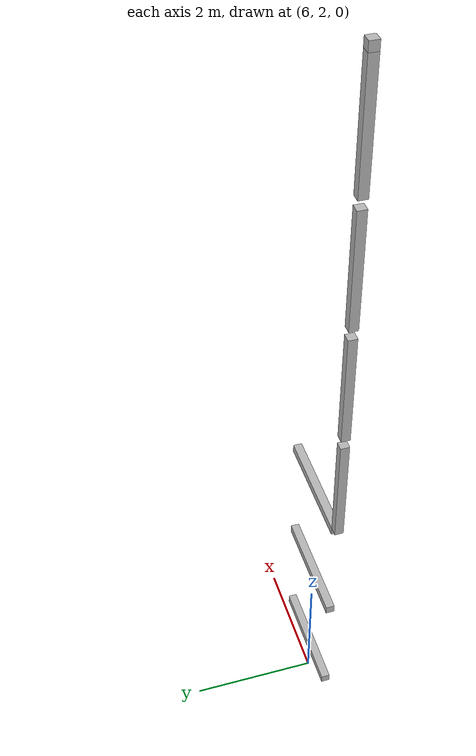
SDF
<sdf version="1.7">
 <world name="default">
  <model name="orthogonal_747_2.000.15_TS">
   <static>1</static>
   <link name="x_link_0_3_6">
    <inertial>
     <mass>1</mass>
     <inertia>
      <ixx>0.166667</ixx>
      <ixy>0</ixy>
      <ixz>0</ixz>
      <iyy>0.166667</iyy>
      <iyz>0</iyz>
      <izz>0.166667</izz>
     </inertia>
    </inertial>
    <pose>13.975 6.45 1.075 0 -0 0</pose>
    <visual name="visual_0">
     <laser_retro>610</laser_retro>
     <geometry><box><size>2 1e-06 0.15</size></box></geometry>
     <material>
      <script><name>Gazebo/Grey</name><uri>file://media/materials/scripts/gazebo.material</uri></script>
      <shader type="pixel"><normal_map>__default__</normal_map></shader>
      <ambient>0.678 0.498 0.659 1</ambient>
      <diffuse>0.7 0.7 0.7 1</diffuse>
      <specular>0.01 0.01 0.01 1</specular>
      <emissive>0 0 0 1</emissive>
     </material>
     <pose>0 -0.075 0 0 -0 0</pose>
     <transparency>1</transparency>
    </visual>
    <visual name="visual_1">
     <laser_retro>611</laser_retro>
     <geometry><box><size>2 1e-06 0.15</size></box></geometry>
     <material>
      <script><name>Gazebo/Grey</name><uri>file://media/materials/scripts/gazebo.material</uri></script>
      <shader type="pixel"><normal_map>__default__</normal_map></shader>
      <ambient>0.447 0.624 0.812 1</ambient>
      <diffuse>0.7 0.7 0.7 1</diffuse>
      <specular>0.01 0.01 0.01 1</specular>
      <emissive>0 0 0 1</emissive>
     </material>
     <pose>0 0.075 0 0 -0 0</pose>
     <transparency>1</transparency>
    </visual>
    <visual name="visual_2">
     <laser_retro>612</laser_retro>
     <geometry><box><size>2 0.15 1e-06</size></box></geometry>
     <material>
      <script><name>Gazebo/Grey</name><uri>file://media/materials/scripts/gazebo.material</uri></script>
      <shader type="pixel"><normal_map>__default__</normal_map></shader>
      <ambient>0.988 0.686 0.243 1</ambient>
      <diffuse>0.7 0.7 0.7 1</diffuse>
      <specular>0.01 0.01 0.01 1</specular>
      <emissive>0 0 0 1</emissive>
     </material>
     <pose>0 0 -0.075 0 -0 0</pose>
     <transparency>1</transparency>
    </visual>
    <visual name="visual_3">
     <laser_retro>613</laser_retro>
     <geometry><box><size>1e-06 0.15 0.15</size></box></geometry>
     <material>
      <script><name>Gazebo/Grey</name><uri>file://media/materials/scripts/gazebo.material</uri></script>
      <shader type="pixel"><normal_map>__default__</normal_map></shader>
      <ambient>0.988 0.914 0.31 1</ambient>
      <diffuse>0.7 0.7 0.7 1</diffuse>
      <specular>0.01 0.01 0.01 1</specular>
      <emissive>0 0 0 1</emissive>
     </material>
     <pose>1 0 0 0 -0 0</pose>
     <transparency>1</transparency>
    </visual>
    <visual name="visual_4">
     <laser_retro>614</laser_retro>
     <geometry><box><size>2 0.15 1e-06</size></box></geometry>
     <material>
      <script><name>Gazebo/Grey</name><uri>file://media/materials/scripts/gazebo.material</uri></script>
      <shader type="pixel"><normal_map>__default__</normal_map></shader>
      <ambient>0.937 0.161 0.161 1</ambient>
      <diffuse>0.7 0.7 0.7 1</diffuse>
      <specular>0.01 0.01 0.01 1</specular>
      <emissive>0 0 0 1</emissive>
     </material>
     <pose>0 0 0.075 0 -0 0</pose>
     <transparency>1</transparency>
    </visual>
    <visual name="visual_5">
     <laser_retro>615</laser_retro>
     <geometry><box><size>1e-06 0.15 0.15</size></box></geometry>
     <material>
      <script><name>Gazebo/Grey</name><uri>file://media/materials/scripts/gazebo.material</uri></script>
      <shader type="pixel"><normal_map>__default__</normal_map></shader>
      <ambient>0.541 0.886 0.204 1</ambient>
      <diffuse>0.7 0.7 0.7 1</diffuse>
      <specular>0.01 0.01 0.01 1</specular>
      <emissive>0 0 0 1</emissive>
     </material>
     <pose>-1 0 0 0 -0 0</pose>
     <transparency>1</transparency>
    </visual>
    <visual name="visual_texture">
     <geometry><box><size>1.9998 0.149985 0.149985</size></box></geometry>
     <material>
      <script>
       <uri>model://BASE_MODELS/simple_block_v2_textured/materials/scripts</uri>
       <uri>model://BASE_MODELS/simple_block_v2_textured/materials/textures</uri>
       <name>metal</name>
      </script>
     </material>
     <laser_retro>616</laser_retro>
    </visual>
    <collision name="collision">
     <geometry><box><size>2 0.15 0.15</size></box></geometry>
     <surface>
      <friction>
       <ode><mu>1</mu><mu2>1</mu2><fdir1>0 0 0</fdir1><slip1>0</slip1><slip2>0</slip2></ode>
       <torsional>
        <coefficient>1</coefficient>
        <patch_radius>0</patch_radius>
        <surface_radius>0</surface_radius>
        <use_patch_radius>1</use_patch_radius>
        <ode><slip>0</slip></ode>
       </torsional>
      </friction>
      <bounce><restitution_coefficient>0</restitution_coefficient><threshold>1e+06</threshold></bounce>
      <contact>
       <collide_without_contact>0</collide_without_contact>
       <collide_without_contact_bitmask>1</collide_without_contact_bitmask>
       <collide_bitmask>1</collide_bitmask>
       <ode>
        <soft_cfm>0</soft_cfm>
        <soft_erp>0.2</soft_erp>
        <kp>1e+13</kp>
        <kd>1</kd>
        <max_vel>0.01</max_vel>
        <min_depth>0</min_depth>
       </ode>
       <bullet>
        <split_impulse>1</split_impulse>
        <split_impulse_penetration_threshold>-0.01</split_impulse_penetration_threshold>
        <soft_cfm>0</soft_cfm>
        <soft_erp>0.2</soft_erp>
        <kp>1e+13</kp>
        <kd>1</kd>
       </bullet>
      </contact>
     </surface>
    </collision>
   </link>
   <link name="x_link_1_3_6">
    <inertial>
     <mass>1</mass>
     <inertia>
      <ixx>0.166667</ixx>
      <ixy>0</ixy>
      <ixz>0</ixz>
      <iyy>0.166667</iyy>
      <iyz>0</iyz>
      <izz>0.166667</izz>
     </inertia>
    </inertial>
    <pose>13.975 6.45 3.225 0 -0 0</pose>
    <visual name="visual_0">
     <laser_retro>1450</laser_retro>
     <geometry><box><size>2 1e-06 0.15</size></box></geometry>
     <material>
      <script><name>Gazebo/Grey</name><uri>file://media/materials/scripts/gazebo.material</uri></script>
      <shader type="pixel"><normal_map>__default__</normal_map></shader>
      <ambient>0.678 0.498 0.659 1</ambient>
      <diffuse>0.7 0.7 0.7 1</diffuse>
      <specular>0.01 0.01 0.01 1</specular>
      <emissive>0 0 0 1</emissive>
     </material>
     <pose>0 -0.075 0 0 -0 0</pose>
     <transparency>1</transparency>
    </visual>
    <visual name="visual_1">
     <laser_retro>1451</laser_retro>
     <geometry><box><size>2 1e-06 0.15</size></box></geometry>
     <material>
      <script><name>Gazebo/Grey</name><uri>file://media/materials/scripts/gazebo.material</uri></script>
      <shader type="pixel"><normal_map>__default__</normal_map></shader>
      <ambient>0.447 0.624 0.812 1</ambient>
      <diffuse>0.7 0.7 0.7 1</diffuse>
      <specular>0.01 0.01 0.01 1</specular>
      <emissive>0 0 0 1</emissive>
     </material>
     <pose>0 0.075 0 0 -0 0</pose>
     <transparency>1</transparency>
    </visual>
    <visual name="visual_2">
     <laser_retro>1452</laser_retro>
     <geometry><box><size>2 0.15 1e-06</size></box></geometry>
     <material>
      <script><name>Gazebo/Grey</name><uri>file://media/materials/scripts/gazebo.material</uri></script>
      <shader type="pixel"><normal_map>__default__</normal_map></shader>
      <ambient>0.988 0.686 0.243 1</ambient>
      <diffuse>0.7 0.7 0.7 1</diffuse>
      <specular>0.01 0.01 0.01 1</specular>
      <emissive>0 0 0 1</emissive>
     </material>
     <pose>0 0 -0.075 0 -0 0</pose>
     <transparency>1</transparency>
    </visual>
    <visual name="visual_3">
     <laser_retro>1453</laser_retro>
     <geometry><box><size>1e-06 0.15 0.15</size></box></geometry>
     <material>
      <script><name>Gazebo/Grey</name><uri>file://media/materials/scripts/gazebo.material</uri></script>
      <shader type="pixel"><normal_map>__default__</normal_map></shader>
      <ambient>0.988 0.914 0.31 1</ambient>
      <diffuse>0.7 0.7 0.7 1</diffuse>
      <specular>0.01 0.01 0.01 1</specular>
      <emissive>0 0 0 1</emissive>
     </material>
     <pose>1 0 0 0 -0 0</pose>
     <transparency>1</transparency>
    </visual>
    <visual name="visual_4">
     <laser_retro>1454</laser_retro>
     <geometry><box><size>2 0.15 1e-06</size></box></geometry>
     <material>
      <script><name>Gazebo/Grey</name><uri>file://media/materials/scripts/gazebo.material</uri></script>
      <shader type="pixel"><normal_map>__default__</normal_map></shader>
      <ambient>0.937 0.161 0.161 1</ambient>
      <diffuse>0.7 0.7 0.7 1</diffuse>
      <specular>0.01 0.01 0.01 1</specular>
      <emissive>0 0 0 1</emissive>
     </material>
     <pose>0 0 0.075 0 -0 0</pose>
     <transparency>1</transparency>
    </visual>
    <visual name="visual_5">
     <laser_retro>1455</laser_retro>
     <geometry><box><size>1e-06 0.15 0.15</size></box></geometry>
     <material>
      <script><name>Gazebo/Grey</name><uri>file://media/materials/scripts/gazebo.material</uri></script>
      <shader type="pixel"><normal_map>__default__</normal_map></shader>
      <ambient>0.541 0.886 0.204 1</ambient>
      <diffuse>0.7 0.7 0.7 1</diffuse>
      <specular>0.01 0.01 0.01 1</specular>
      <emissive>0 0 0 1</emissive>
     </material>
     <pose>-1 0 0 0 -0 0</pose>
     <transparency>1</transparency>
    </visual>
    <visual name="visual_texture">
     <geometry><box><size>1.9998 0.149985 0.149985</size></box></geometry>
     <material>
      <script>
       <uri>model://BASE_MODELS/simple_block_v2_textured/materials/scripts</uri>
       <uri>model://BASE_MODELS/simple_block_v2_textured/materials/textures</uri>
       <name>metal</name>
      </script>
     </material>
     <laser_retro>1456</laser_retro>
    </visual>
    <collision name="collision">
     <geometry><box><size>2 0.15 0.15</size></box></geometry>
     <surface>
      <friction>
       <ode><mu>1</mu><mu2>1</mu2><fdir1>0 0 0</fdir1><slip1>0</slip1><slip2>0</slip2></ode>
       <torsional>
        <coefficient>1</coefficient>
        <patch_radius>0</patch_radius>
        <surface_radius>0</surface_radius>
        <use_patch_radius>1</use_patch_radius>
        <ode><slip>0</slip></ode>
       </torsional>
      </friction>
      <bounce><restitution_coefficient>0</restitution_coefficient><threshold>1e+06</threshold></bounce>
      <contact>
       <collide_without_contact>0</collide_without_contact>
       <collide_without_contact_bitmask>1</collide_without_contact_bitmask>
       <collide_bitmask>1</collide_bitmask>
       <ode>
        <soft_cfm>0</soft_cfm>
        <soft_erp>0.2</soft_erp>
        <kp>1e+13</kp>
        <kd>1</kd>
        <max_vel>0.01</max_vel>
        <min_depth>0</min_depth>
       </ode>
       <bullet>
        <split_impulse>1</split_impulse>
        <split_impulse_penetration_threshold>-0.01</split_impulse_penetration_threshold>
        <soft_cfm>0</soft_cfm>
        <soft_erp>0.2</soft_erp>
        <kp>1e+13</kp>
        <kd>1</kd>
       </bullet>
      </contact>
     </surface>
    </collision>
   </link>
   <link name="x_link_2_3_6">
    <inertial>
     <mass>1</mass>
     <inertia>
      <ixx>0.166667</ixx>
      <ixy>0</ixy>
      <ixz>0</ixz>
      <iyy>0.166667</iyy>
      <iyz>0</iyz>
      <izz>0.166667</izz>
     </inertia>
    </inertial>
    <pose>13.975 6.45 5.375 0 -0 0</pose>
    <visual name="visual_0">
     <laser_retro>2353</laser_retro>
     <geometry><box><size>2 1e-06 0.15</size></box></geometry>
     <material>
      <script><name>Gazebo/Grey</name><uri>file://media/materials/scripts/gazebo.material</uri></script>
      <shader type="pixel"><normal_map>__default__</normal_map></shader>
      <ambient>0.678 0.498 0.659 1</ambient>
      <diffuse>0.7 0.7 0.7 1</diffuse>
      <specular>0.01 0.01 0.01 1</specular>
      <emissive>0 0 0 1</emissive>
     </material>
     <pose>0 -0.075 0 0 -0 0</pose>
     <transparency>1</transparency>
    </visual>
    <visual name="visual_1">
     <laser_retro>2354</laser_retro>
     <geometry><box><size>2 1e-06 0.15</size></box></geometry>
     <material>
      <script><name>Gazebo/Grey</name><uri>file://media/materials/scripts/gazebo.material</uri></script>
      <shader type="pixel"><normal_map>__default__</normal_map></shader>
      <ambient>0.447 0.624 0.812 1</ambient>
      <diffuse>0.7 0.7 0.7 1</diffuse>
      <specular>0.01 0.01 0.01 1</specular>
      <emissive>0 0 0 1</emissive>
     </material>
     <pose>0 0.075 0 0 -0 0</pose>
     <transparency>1</transparency>
    </visual>
    <visual name="visual_2">
     <laser_retro>2355</laser_retro>
     <geometry><box><size>2 0.15 1e-06</size></box></geometry>
     <material>
      <script><name>Gazebo/Grey</name><uri>file://media/materials/scripts/gazebo.material</uri></script>
      <shader type="pixel"><normal_map>__default__</normal_map></shader>
      <ambient>0.988 0.686 0.243 1</ambient>
      <diffuse>0.7 0.7 0.7 1</diffuse>
      <specular>0.01 0.01 0.01 1</specular>
      <emissive>0 0 0 1</emissive>
     </material>
     <pose>0 0 -0.075 0 -0 0</pose>
     <transparency>1</transparency>
    </visual>
    <visual name="visual_3">
     <laser_retro>2356</laser_retro>
     <geometry><box><size>1e-06 0.15 0.15</size></box></geometry>
     <material>
      <script><name>Gazebo/Grey</name><uri>file://media/materials/scripts/gazebo.material</uri></script>
      <shader type="pixel"><normal_map>__default__</normal_map></shader>
      <ambient>0.988 0.914 0.31 1</ambient>
      <diffuse>0.7 0.7 0.7 1</diffuse>
      <specular>0.01 0.01 0.01 1</specular>
      <emissive>0 0 0 1</emissive>
     </material>
     <pose>1 0 0 0 -0 0</pose>
     <transparency>1</transparency>
    </visual>
    <visual name="visual_4">
     <laser_retro>2357</laser_retro>
     <geometry><box><size>2 0.15 1e-06</size></box></geometry>
     <material>
      <script><name>Gazebo/Grey</name><uri>file://media/materials/scripts/gazebo.material</uri></script>
      <shader type="pixel"><normal_map>__default__</normal_map></shader>
      <ambient>0.937 0.161 0.161 1</ambient>
      <diffuse>0.7 0.7 0.7 1</diffuse>
      <specular>0.01 0.01 0.01 1</specular>
      <emissive>0 0 0 1</emissive>
     </material>
     <pose>0 0 0.075 0 -0 0</pose>
     <transparency>1</transparency>
    </visual>
    <visual name="visual_5">
     <laser_retro>2358</laser_retro>
     <geometry><box><size>1e-06 0.15 0.15</size></box></geometry>
     <material>
      <script><name>Gazebo/Grey</name><uri>file://media/materials/scripts/gazebo.material</uri></script>
      <shader type="pixel"><normal_map>__default__</normal_map></shader>
      <ambient>0.541 0.886 0.204 1</ambient>
      <diffuse>0.7 0.7 0.7 1</diffuse>
      <specular>0.01 0.01 0.01 1</specular>
      <emissive>0 0 0 1</emissive>
     </material>
     <pose>-1 0 0 0 -0 0</pose>
     <transparency>1</transparency>
    </visual>
    <visual name="visual_texture">
     <geometry><box><size>1.9998 0.149985 0.149985</size></box></geometry>
     <material>
      <script>
       <uri>model://BASE_MODELS/simple_block_v2_textured/materials/scripts</uri>
       <uri>model://BASE_MODELS/simple_block_v2_textured/materials/textures</uri>
       <name>metal</name>
      </script>
     </material>
     <laser_retro>2359</laser_retro>
    </visual>
    <collision name="collision">
     <geometry><box><size>2 0.15 0.15</size></box></geometry>
     <surface>
      <friction>
       <ode><mu>1</mu><mu2>1</mu2><fdir1>0 0 0</fdir1><slip1>0</slip1><slip2>0</slip2></ode>
       <torsional>
        <coefficient>1</coefficient>
        <patch_radius>0</patch_radius>
        <surface_radius>0</surface_radius>
        <use_patch_radius>1</use_patch_radius>
        <ode><slip>0</slip></ode>
       </torsional>
      </friction>
      <bounce><restitution_coefficient>0</restitution_coefficient><threshold>1e+06</threshold></bounce>
      <contact>
       <collide_without_contact>0</collide_without_contact>
       <collide_without_contact_bitmask>1</collide_without_contact_bitmask>
       <collide_bitmask>1</collide_bitmask>
       <ode>
        <soft_cfm>0</soft_cfm>
        <soft_erp>0.2</soft_erp>
        <kp>1e+13</kp>
        <kd>1</kd>
        <max_vel>0.01</max_vel>
        <min_depth>0</min_depth>
       </ode>
       <bullet>
        <split_impulse>1</split_impulse>
        <split_impulse_penetration_threshold>-0.01</split_impulse_penetration_threshold>
        <soft_cfm>0</soft_cfm>
        <soft_erp>0.2</soft_erp>
        <kp>1e+13</kp>
        <kd>1</kd>
       </bullet>
      </contact>
     </surface>
    </collision>
   </link>
   <link name="z_link_3_3_6">
    <inertial>
     <mass>1</mass>
     <inertia>
      <ixx>0.166667</ixx>
      <ixy>0</ixy>
      <ixz>0</ixz>
      <iyy>0.166667</iyy>
      <iyz>0</iyz>
      <izz>0.166667</izz>
     </inertia>
    </inertial>
    <pose>12.9 6.45 6.45 0 -0 0</pose>
    <visual name="visual_0">
     <laser_retro>3270</laser_retro>
     <geometry><box><size>0.15 1e-06 2</size></box></geometry>
     <material>
      <script><name>Gazebo/Grey</name><uri>file://media/materials/scripts/gazebo.material</uri></script>
      <shader type="pixel"><normal_map>__default__</normal_map></shader>
      <ambient>0.678 0.498 0.659 1</ambient>
      <diffuse>0.7 0.7 0.7 1</diffuse>
      <specular>0.01 0.01 0.01 1</specular>
      <emissive>0 0 0 1</emissive>
     </material>
     <pose>0 -0.075 0 0 -0 0</pose>
     <transparency>1</transparency>
    </visual>
    <visual name="visual_1">
     <laser_retro>3271</laser_retro>
     <geometry><box><size>0.15 1e-06 2</size></box></geometry>
     <material>
      <script><name>Gazebo/Grey</name><uri>file://media/materials/scripts/gazebo.material</uri></script>
      <shader type="pixel"><normal_map>__default__</normal_map></shader>
      <ambient>0.447 0.624 0.812 1</ambient>
      <diffuse>0.7 0.7 0.7 1</diffuse>
      <specular>0.01 0.01 0.01 1</specular>
      <emissive>0 0 0 1</emissive>
     </material>
     <pose>0 0.075 0 0 -0 0</pose>
     <transparency>1</transparency>
    </visual>
    <visual name="visual_2">
     <laser_retro>3272</laser_retro>
     <geometry><box><size>0.15 0.15 1e-06</size></box></geometry>
     <material>
      <script><name>Gazebo/Grey</name><uri>file://media/materials/scripts/gazebo.material</uri></script>
      <shader type="pixel"><normal_map>__default__</normal_map></shader>
      <ambient>0.988 0.686 0.243 1</ambient>
      <diffuse>0.7 0.7 0.7 1</diffuse>
      <specular>0.01 0.01 0.01 1</specular>
      <emissive>0 0 0 1</emissive>
     </material>
     <pose>0 0 -1 0 -0 0</pose>
     <transparency>1</transparency>
    </visual>
    <visual name="visual_3">
     <laser_retro>3273</laser_retro>
     <geometry><box><size>1e-06 0.15 2</size></box></geometry>
     <material>
      <script><name>Gazebo/Grey</name><uri>file://media/materials/scripts/gazebo.material</uri></script>
      <shader type="pixel"><normal_map>__default__</normal_map></shader>
      <ambient>0.988 0.914 0.31 1</ambient>
      <diffuse>0.7 0.7 0.7 1</diffuse>
      <specular>0.01 0.01 0.01 1</specular>
      <emissive>0 0 0 1</emissive>
     </material>
     <pose>0.075 0 0 0 -0 0</pose>
     <transparency>1</transparency>
    </visual>
    <visual name="visual_4">
     <laser_retro>3274</laser_retro>
     <geometry><box><size>0.15 0.15 1e-06</size></box></geometry>
     <material>
      <script><name>Gazebo/Grey</name><uri>file://media/materials/scripts/gazebo.material</uri></script>
      <shader type="pixel"><normal_map>__default__</normal_map></shader>
      <ambient>0.937 0.161 0.161 1</ambient>
      <diffuse>0.7 0.7 0.7 1</diffuse>
      <specular>0.01 0.01 0.01 1</specular>
      <emissive>0 0 0 1</emissive>
     </material>
     <pose>0 0 1 0 -0 0</pose>
     <transparency>1</transparency>
    </visual>
    <visual name="visual_5">
     <laser_retro>3275</laser_retro>
     <geometry><box><size>1e-06 0.15 2</size></box></geometry>
     <material>
      <script><name>Gazebo/Grey</name><uri>file://media/materials/scripts/gazebo.material</uri></script>
      <shader type="pixel"><normal_map>__default__</normal_map></shader>
      <ambient>0.541 0.886 0.204 1</ambient>
      <diffuse>0.7 0.7 0.7 1</diffuse>
      <specular>0.01 0.01 0.01 1</specular>
      <emissive>0 0 0 1</emissive>
     </material>
     <pose>-0.075 0 0 0 -0 0</pose>
     <transparency>1</transparency>
    </visual>
    <visual name="visual_texture">
     <geometry><box><size>0.149985 0.149985 1.9998</size></box></geometry>
     <material>
      <script>
       <uri>model://BASE_MODELS/simple_block_v2_textured/materials/scripts</uri>
       <uri>model://BASE_MODELS/simple_block_v2_textured/materials/textures</uri>
       <name>metal</name>
      </script>
     </material>
     <laser_retro>3276</laser_retro>
    </visual>
    <collision name="collision">
     <geometry><box><size>0.15 0.15 2</size></box></geometry>
     <surface>
      <friction>
       <ode><mu>1</mu><mu2>1</mu2><fdir1>0 0 0</fdir1><slip1>0</slip1><slip2>0</slip2></ode>
       <torsional>
        <coefficient>1</coefficient>
        <patch_radius>0</patch_radius>
        <surface_radius>0</surface_radius>
        <use_patch_radius>1</use_patch_radius>
        <ode><slip>0</slip></ode>
       </torsional>
      </friction>
      <bounce><restitution_coefficient>0</restitution_coefficient><threshold>1e+06</threshold></bounce>
      <contact>
       <collide_without_contact>0</collide_without_contact>
       <collide_without_contact_bitmask>1</collide_without_contact_bitmask>
       <collide_bitmask>1</collide_bitmask>
       <ode>
        <soft_cfm>0</soft_cfm>
        <soft_erp>0.2</soft_erp>
        <kp>1e+13</kp>
        <kd>1</kd>
        <max_vel>0.01</max_vel>
        <min_depth>0</min_depth>
       </ode>
       <bullet>
        <split_impulse>1</split_impulse>
        <split_impulse_penetration_threshold>-0.01</split_impulse_penetration_threshold>
        <soft_cfm>0</soft_cfm>
        <soft_erp>0.2</soft_erp>
        <kp>1e+13</kp>
        <kd>1</kd>
       </bullet>
      </contact>
     </surface>
    </collision>
   </link>
   <link name="z_link_4_3_6">
    <inertial>
     <mass>1</mass>
     <inertia>
      <ixx>0.166667</ixx>
      <ixy>0</ixy>
      <ixz>0</ixz>
      <iyy>0.166667</iyy>
      <iyz>0</iyz>
      <izz>0.166667</izz>
     </inertia>
    </inertial>
    <pose>12.9 6.45 8.6 0 -0 0</pose>
    <visual name="visual_0">
     <laser_retro>4173</laser_retro>
     <geometry><box><size>0.15 1e-06 2</size></box></geometry>
     <material>
      <script><name>Gazebo/Grey</name><uri>file://media/materials/scripts/gazebo.material</uri></script>
      <shader type="pixel"><normal_map>__default__</normal_map></shader>
      <ambient>0.678 0.498 0.659 1</ambient>
      <diffuse>0.7 0.7 0.7 1</diffuse>
      <specular>0.01 0.01 0.01 1</specular>
      <emissive>0 0 0 1</emissive>
     </material>
     <pose>0 -0.075 0 0 -0 0</pose>
     <transparency>1</transparency>
    </visual>
    <visual name="visual_1">
     <laser_retro>4174</laser_retro>
     <geometry><box><size>0.15 1e-06 2</size></box></geometry>
     <material>
      <script><name>Gazebo/Grey</name><uri>file://media/materials/scripts/gazebo.material</uri></script>
      <shader type="pixel"><normal_map>__default__</normal_map></shader>
      <ambient>0.447 0.624 0.812 1</ambient>
      <diffuse>0.7 0.7 0.7 1</diffuse>
      <specular>0.01 0.01 0.01 1</specular>
      <emissive>0 0 0 1</emissive>
     </material>
     <pose>0 0.075 0 0 -0 0</pose>
     <transparency>1</transparency>
    </visual>
    <visual name="visual_2">
     <laser_retro>4175</laser_retro>
     <geometry><box><size>0.15 0.15 1e-06</size></box></geometry>
     <material>
      <script><name>Gazebo/Grey</name><uri>file://media/materials/scripts/gazebo.material</uri></script>
      <shader type="pixel"><normal_map>__default__</normal_map></shader>
      <ambient>0.988 0.686 0.243 1</ambient>
      <diffuse>0.7 0.7 0.7 1</diffuse>
      <specular>0.01 0.01 0.01 1</specular>
      <emissive>0 0 0 1</emissive>
     </material>
     <pose>0 0 -1 0 -0 0</pose>
     <transparency>1</transparency>
    </visual>
    <visual name="visual_3">
     <laser_retro>4176</laser_retro>
     <geometry><box><size>1e-06 0.15 2</size></box></geometry>
     <material>
      <script><name>Gazebo/Grey</name><uri>file://media/materials/scripts/gazebo.material</uri></script>
      <shader type="pixel"><normal_map>__default__</normal_map></shader>
      <ambient>0.988 0.914 0.31 1</ambient>
      <diffuse>0.7 0.7 0.7 1</diffuse>
      <specular>0.01 0.01 0.01 1</specular>
      <emissive>0 0 0 1</emissive>
     </material>
     <pose>0.075 0 0 0 -0 0</pose>
     <transparency>1</transparency>
    </visual>
    <visual name="visual_4">
     <laser_retro>4177</laser_retro>
     <geometry><box><size>0.15 0.15 1e-06</size></box></geometry>
     <material>
      <script><name>Gazebo/Grey</name><uri>file://media/materials/scripts/gazebo.material</uri></script>
      <shader type="pixel"><normal_map>__default__</normal_map></shader>
      <ambient>0.937 0.161 0.161 1</ambient>
      <diffuse>0.7 0.7 0.7 1</diffuse>
      <specular>0.01 0.01 0.01 1</specular>
      <emissive>0 0 0 1</emissive>
     </material>
     <pose>0 0 1 0 -0 0</pose>
     <transparency>1</transparency>
    </visual>
    <visual name="visual_5">
     <laser_retro>4178</laser_retro>
     <geometry><box><size>1e-06 0.15 2</size></box></geometry>
     <material>
      <script><name>Gazebo/Grey</name><uri>file://media/materials/scripts/gazebo.material</uri></script>
      <shader type="pixel"><normal_map>__default__</normal_map></shader>
      <ambient>0.541 0.886 0.204 1</ambient>
      <diffuse>0.7 0.7 0.7 1</diffuse>
      <specular>0.01 0.01 0.01 1</specular>
      <emissive>0 0 0 1</emissive>
     </material>
     <pose>-0.075 0 0 0 -0 0</pose>
     <transparency>1</transparency>
    </visual>
    <visual name="visual_texture">
     <geometry><box><size>0.149985 0.149985 1.9998</size></box></geometry>
     <material>
      <script>
       <uri>model://BASE_MODELS/simple_block_v2_textured/materials/scripts</uri>
       <uri>model://BASE_MODELS/simple_block_v2_textured/materials/textures</uri>
       <name>metal</name>
      </script>
     </material>
     <laser_retro>4179</laser_retro>
    </visual>
    <collision name="collision">
     <geometry><box><size>0.15 0.15 2</size></box></geometry>
     <surface>
      <friction>
       <ode><mu>1</mu><mu2>1</mu2><fdir1>0 0 0</fdir1><slip1>0</slip1><slip2>0</slip2></ode>
       <torsional>
        <coefficient>1</coefficient>
        <patch_radius>0</patch_radius>
        <surface_radius>0</surface_radius>
        <use_patch_radius>1</use_patch_radius>
        <ode><slip>0</slip></ode>
       </torsional>
      </friction>
      <bounce><restitution_coefficient>0</restitution_coefficient><threshold>1e+06</threshold></bounce>
      <contact>
       <collide_without_contact>0</collide_without_contact>
       <collide_without_contact_bitmask>1</collide_without_contact_bitmask>
       <collide_bitmask>1</collide_bitmask>
       <ode>
        <soft_cfm>0</soft_cfm>
        <soft_erp>0.2</soft_erp>
        <kp>1e+13</kp>
        <kd>1</kd>
        <max_vel>0.01</max_vel>
        <min_depth>0</min_depth>
       </ode>
       <bullet>
        <split_impulse>1</split_impulse>
        <split_impulse_penetration_threshold>-0.01</split_impulse_penetration_threshold>
        <soft_cfm>0</soft_cfm>
        <soft_erp>0.2</soft_erp>
        <kp>1e+13</kp>
        <kd>1</kd>
       </bullet>
      </contact>
     </surface>
    </collision>
   </link>
   <link name="z_link_5_3_6">
    <inertial>
     <mass>1</mass>
     <inertia>
      <ixx>0.166667</ixx>
      <ixy>0</ixy>
      <ixz>0</ixz>
      <iyy>0.166667</iyy>
      <iyz>0</iyz>
      <izz>0.166667</izz>
     </inertia>
    </inertial>
    <pose>12.9 6.45 10.75 0 -0 0</pose>
    <visual name="visual_0">
     <laser_retro>5076</laser_retro>
     <geometry><box><size>0.15 1e-06 2</size></box></geometry>
     <material>
      <script><name>Gazebo/Grey</name><uri>file://media/materials/scripts/gazebo.material</uri></script>
      <shader type="pixel"><normal_map>__default__</normal_map></shader>
      <ambient>0.678 0.498 0.659 1</ambient>
      <diffuse>0.7 0.7 0.7 1</diffuse>
      <specular>0.01 0.01 0.01 1</specular>
      <emissive>0 0 0 1</emissive>
     </material>
     <pose>0 -0.075 0 0 -0 0</pose>
     <transparency>1</transparency>
    </visual>
    <visual name="visual_1">
     <laser_retro>5077</laser_retro>
     <geometry><box><size>0.15 1e-06 2</size></box></geometry>
     <material>
      <script><name>Gazebo/Grey</name><uri>file://media/materials/scripts/gazebo.material</uri></script>
      <shader type="pixel"><normal_map>__default__</normal_map></shader>
      <ambient>0.447 0.624 0.812 1</ambient>
      <diffuse>0.7 0.7 0.7 1</diffuse>
      <specular>0.01 0.01 0.01 1</specular>
      <emissive>0 0 0 1</emissive>
     </material>
     <pose>0 0.075 0 0 -0 0</pose>
     <transparency>1</transparency>
    </visual>
    <visual name="visual_2">
     <laser_retro>5078</laser_retro>
     <geometry><box><size>0.15 0.15 1e-06</size></box></geometry>
     <material>
      <script><name>Gazebo/Grey</name><uri>file://media/materials/scripts/gazebo.material</uri></script>
      <shader type="pixel"><normal_map>__default__</normal_map></shader>
      <ambient>0.988 0.686 0.243 1</ambient>
      <diffuse>0.7 0.7 0.7 1</diffuse>
      <specular>0.01 0.01 0.01 1</specular>
      <emissive>0 0 0 1</emissive>
     </material>
     <pose>0 0 -1 0 -0 0</pose>
     <transparency>1</transparency>
    </visual>
    <visual name="visual_3">
     <laser_retro>5079</laser_retro>
     <geometry><box><size>1e-06 0.15 2</size></box></geometry>
     <material>
      <script><name>Gazebo/Grey</name><uri>file://media/materials/scripts/gazebo.material</uri></script>
      <shader type="pixel"><normal_map>__default__</normal_map></shader>
      <ambient>0.988 0.914 0.31 1</ambient>
      <diffuse>0.7 0.7 0.7 1</diffuse>
      <specular>0.01 0.01 0.01 1</specular>
      <emissive>0 0 0 1</emissive>
     </material>
     <pose>0.075 0 0 0 -0 0</pose>
     <transparency>1</transparency>
    </visual>
    <visual name="visual_4">
     <laser_retro>5080</laser_retro>
     <geometry><box><size>0.15 0.15 1e-06</size></box></geometry>
     <material>
      <script><name>Gazebo/Grey</name><uri>file://media/materials/scripts/gazebo.material</uri></script>
      <shader type="pixel"><normal_map>__default__</normal_map></shader>
      <ambient>0.937 0.161 0.161 1</ambient>
      <diffuse>0.7 0.7 0.7 1</diffuse>
      <specular>0.01 0.01 0.01 1</specular>
      <emissive>0 0 0 1</emissive>
     </material>
     <pose>0 0 1 0 -0 0</pose>
     <transparency>1</transparency>
    </visual>
    <visual name="visual_5">
     <laser_retro>5081</laser_retro>
     <geometry><box><size>1e-06 0.15 2</size></box></geometry>
     <material>
      <script><name>Gazebo/Grey</name><uri>file://media/materials/scripts/gazebo.material</uri></script>
      <shader type="pixel"><normal_map>__default__</normal_map></shader>
      <ambient>0.541 0.886 0.204 1</ambient>
      <diffuse>0.7 0.7 0.7 1</diffuse>
      <specular>0.01 0.01 0.01 1</specular>
      <emissive>0 0 0 1</emissive>
     </material>
     <pose>-0.075 0 0 0 -0 0</pose>
     <transparency>1</transparency>
    </visual>
    <visual name="visual_texture">
     <geometry><box><size>0.149985 0.149985 1.9998</size></box></geometry>
     <material>
      <script>
       <uri>model://BASE_MODELS/simple_block_v2_textured/materials/scripts</uri>
       <uri>model://BASE_MODELS/simple_block_v2_textured/materials/textures</uri>
       <name>metal</name>
      </script>
     </material>
     <laser_retro>5082</laser_retro>
    </visual>
    <collision name="collision">
     <geometry><box><size>0.15 0.15 2</size></box></geometry>
     <surface>
      <friction>
       <ode><mu>1</mu><mu2>1</mu2><fdir1>0 0 0</fdir1><slip1>0</slip1><slip2>0</slip2></ode>
       <torsional>
        <coefficient>1</coefficient>
        <patch_radius>0</patch_radius>
        <surface_radius>0</surface_radius>
        <use_patch_radius>1</use_patch_radius>
        <ode><slip>0</slip></ode>
       </torsional>
      </friction>
      <bounce><restitution_coefficient>0</restitution_coefficient><threshold>1e+06</threshold></bounce>
      <contact>
       <collide_without_contact>0</collide_without_contact>
       <collide_without_contact_bitmask>1</collide_without_contact_bitmask>
       <collide_bitmask>1</collide_bitmask>
       <ode>
        <soft_cfm>0</soft_cfm>
        <soft_erp>0.2</soft_erp>
        <kp>1e+13</kp>
        <kd>1</kd>
        <max_vel>0.01</max_vel>
        <min_depth>0</min_depth>
       </ode>
       <bullet>
        <split_impulse>1</split_impulse>
        <split_impulse_penetration_threshold>-0.01</split_impulse_penetration_threshold>
        <soft_cfm>0</soft_cfm>
        <soft_erp>0.2</soft_erp>
        <kp>1e+13</kp>
        <kd>1</kd>
       </bullet>
      </contact>
     </surface>
    </collision>
   </link>
   <link name="u_link_6_3_6">
    <inertial>
     <mass>1</mass>
     <inertia>
      <ixx>0.166667</ixx>
      <ixy>0</ixy>
      <ixz>0</ixz>
      <iyy>0.166667</iyy>
      <iyz>0</iyz>
      <izz>0.166667</izz>
     </inertia>
    </inertial>
    <pose>12.9 6.45 13.975 0 -0 0</pose>
    <visual name="visual_0">
     <laser_retro>6098</laser_retro>
     <geometry><box><size>0.15 1e-06 0.15</size></box></geometry>
     <material>
      <script><name>Gazebo/Grey</name><uri>file://media/materials/scripts/gazebo.material</uri></script>
      <shader type="pixel"><normal_map>__default__</normal_map></shader>
      <ambient>0.678 0.498 0.659 1</ambient>
      <diffuse>0.7 0.7 0.7 1</diffuse>
      <specular>0.01 0.01 0.01 1</specular>
      <emissive>0 0 0 1</emissive>
     </material>
     <pose>0 -0.075 0 0 -0 0</pose>
     <transparency>1</transparency>
    </visual>
    <visual name="visual_1">
     <laser_retro>6099</laser_retro>
     <geometry><box><size>0.15 1e-06 0.15</size></box></geometry>
     <material>
      <script><name>Gazebo/Grey</name><uri>file://media/materials/scripts/gazebo.material</uri></script>
      <shader type="pixel"><normal_map>__default__</normal_map></shader>
      <ambient>0.447 0.624 0.812 1</ambient>
      <diffuse>0.7 0.7 0.7 1</diffuse>
      <specular>0.01 0.01 0.01 1</specular>
      <emissive>0 0 0 1</emissive>
     </material>
     <pose>0 0.075 0 0 -0 0</pose>
     <transparency>1</transparency>
    </visual>
    <visual name="visual_2">
     <laser_retro>6100</laser_retro>
     <geometry><box><size>0.15 0.15 1e-06</size></box></geometry>
     <material>
      <script><name>Gazebo/Grey</name><uri>file://media/materials/scripts/gazebo.material</uri></script>
      <shader type="pixel"><normal_map>__default__</normal_map></shader>
      <ambient>0.988 0.686 0.243 1</ambient>
      <diffuse>0.7 0.7 0.7 1</diffuse>
      <specular>0.01 0.01 0.01 1</specular>
      <emissive>0 0 0 1</emissive>
     </material>
     <pose>0 0 -0.075 0 -0 0</pose>
     <transparency>1</transparency>
    </visual>
    <visual name="visual_3">
     <laser_retro>6101</laser_retro>
     <geometry><box><size>1e-06 0.15 0.15</size></box></geometry>
     <material>
      <script><name>Gazebo/Grey</name><uri>file://media/materials/scripts/gazebo.material</uri></script>
      <shader type="pixel"><normal_map>__default__</normal_map></shader>
      <ambient>0.988 0.914 0.31 1</ambient>
      <diffuse>0.7 0.7 0.7 1</diffuse>
      <specular>0.01 0.01 0.01 1</specular>
      <emissive>0 0 0 1</emissive>
     </material>
     <pose>0.075 0 0 0 -0 0</pose>
     <transparency>1</transparency>
    </visual>
    <visual name="visual_4">
     <laser_retro>6102</laser_retro>
     <geometry><box><size>0.15 0.15 1e-06</size></box></geometry>
     <material>
      <script><name>Gazebo/Grey</name><uri>file://media/materials/scripts/gazebo.material</uri></script>
      <shader type="pixel"><normal_map>__default__</normal_map></shader>
      <ambient>0.937 0.161 0.161 1</ambient>
      <diffuse>0.7 0.7 0.7 1</diffuse>
      <specular>0.01 0.01 0.01 1</specular>
      <emissive>0 0 0 1</emissive>
     </material>
     <pose>0 0 0.075 0 -0 0</pose>
     <transparency>1</transparency>
    </visual>
    <visual name="visual_5">
     <laser_retro>6103</laser_retro>
     <geometry><box><size>1e-06 0.15 0.15</size></box></geometry>
     <material>
      <script><name>Gazebo/Grey</name><uri>file://media/materials/scripts/gazebo.material</uri></script>
      <shader type="pixel"><normal_map>__default__</normal_map></shader>
      <ambient>0.541 0.886 0.204 1</ambient>
      <diffuse>0.7 0.7 0.7 1</diffuse>
      <specular>0.01 0.01 0.01 1</specular>
      <emissive>0 0 0 1</emissive>
     </material>
     <pose>-0.075 0 0 0 -0 0</pose>
     <transparency>1</transparency>
    </visual>
    <visual name="visual_texture">
     <geometry><box><size>0.149985 0.149985 0.149985</size></box></geometry>
     <material>
      <script>
       <uri>model://BASE_MODELS/simple_block_v2_textured/materials/scripts</uri>
       <uri>model://BASE_MODELS/simple_block_v2_textured/materials/textures</uri>
       <name>metal</name>
      </script>
     </material>
     <laser_retro>6104</laser_retro>
    </visual>
    <collision name="collision">
     <geometry><box><size>0.15 0.15 0.15</size></box></geometry>
     <surface>
      <friction>
       <ode><mu>1</mu><mu2>1</mu2><fdir1>0 0 0</fdir1><slip1>0</slip1><slip2>0</slip2></ode>
       <torsional>
        <coefficient>1</coefficient>
        <patch_radius>0</patch_radius>
        <surface_radius>0</surface_radius>
        <use_patch_radius>1</use_patch_radius>
        <ode><slip>0</slip></ode>
       </torsional>
      </friction>
      <bounce><restitution_coefficient>0</restitution_coefficient><threshold>1e+06</threshold></bounce>
      <contact>
       <collide_without_contact>0</collide_without_contact>
       <collide_without_contact_bitmask>1</collide_without_contact_bitmask>
       <collide_bitmask>1</collide_bitmask>
       <ode>
        <soft_cfm>0</soft_cfm>
        <soft_erp>0.2</soft_erp>
        <kp>1e+13</kp>
        <kd>1</kd>
        <max_vel>0.01</max_vel>
        <min_depth>0</min_depth>
       </ode>
       <bullet>
        <split_impulse>1</split_impulse>
        <split_impulse_penetration_threshold>-0.01</split_impulse_penetration_threshold>
        <soft_cfm>0</soft_cfm>
        <soft_erp>0.2</soft_erp>
        <kp>1e+13</kp>
        <kd>1</kd>
       </bullet>
      </contact>
     </surface>
    </collision>
   </link>
   <link name="z_link_6_3_6">
    <inertial>
     <mass>1</mass>
     <inertia>
      <ixx>0.166667</ixx>
      <ixy>0</ixy>
      <ixz>0</ixz>
      <iyy>0.166667</iyy>
      <iyz>0</iyz>
      <izz>0.166667</izz>
     </inertia>
    </inertial>
    <pose>12.9 6.45 12.9 0 -0 0</pose>
    <visual name="visual_0">
     <laser_retro>6105</laser_retro>
     <geometry><box><size>0.15 1e-06 2</size></box></geometry>
     <material>
      <script><name>Gazebo/Grey</name><uri>file://media/materials/scripts/gazebo.material</uri></script>
      <shader type="pixel"><normal_map>__default__</normal_map></shader>
      <ambient>0.678 0.498 0.659 1</ambient>
      <diffuse>0.7 0.7 0.7 1</diffuse>
      <specular>0.01 0.01 0.01 1</specular>
      <emissive>0 0 0 1</emissive>
     </material>
     <pose>0 -0.075 0 0 -0 0</pose>
     <transparency>1</transparency>
    </visual>
    <visual name="visual_1">
     <laser_retro>6106</laser_retro>
     <geometry><box><size>0.15 1e-06 2</size></box></geometry>
     <material>
      <script><name>Gazebo/Grey</name><uri>file://media/materials/scripts/gazebo.material</uri></script>
      <shader type="pixel"><normal_map>__default__</normal_map></shader>
      <ambient>0.447 0.624 0.812 1</ambient>
      <diffuse>0.7 0.7 0.7 1</diffuse>
      <specular>0.01 0.01 0.01 1</specular>
      <emissive>0 0 0 1</emissive>
     </material>
     <pose>0 0.075 0 0 -0 0</pose>
     <transparency>1</transparency>
    </visual>
    <visual name="visual_2">
     <laser_retro>6107</laser_retro>
     <geometry><box><size>0.15 0.15 1e-06</size></box></geometry>
     <material>
      <script><name>Gazebo/Grey</name><uri>file://media/materials/scripts/gazebo.material</uri></script>
      <shader type="pixel"><normal_map>__default__</normal_map></shader>
      <ambient>0.988 0.686 0.243 1</ambient>
      <diffuse>0.7 0.7 0.7 1</diffuse>
      <specular>0.01 0.01 0.01 1</specular>
      <emissive>0 0 0 1</emissive>
     </material>
     <pose>0 0 -1 0 -0 0</pose>
     <transparency>1</transparency>
    </visual>
    <visual name="visual_3">
     <laser_retro>6108</laser_retro>
     <geometry><box><size>1e-06 0.15 2</size></box></geometry>
     <material>
      <script><name>Gazebo/Grey</name><uri>file://media/materials/scripts/gazebo.material</uri></script>
      <shader type="pixel"><normal_map>__default__</normal_map></shader>
      <ambient>0.988 0.914 0.31 1</ambient>
      <diffuse>0.7 0.7 0.7 1</diffuse>
      <specular>0.01 0.01 0.01 1</specular>
      <emissive>0 0 0 1</emissive>
     </material>
     <pose>0.075 0 0 0 -0 0</pose>
     <transparency>1</transparency>
    </visual>
    <visual name="visual_4">
     <laser_retro>6109</laser_retro>
     <geometry><box><size>0.15 0.15 1e-06</size></box></geometry>
     <material>
      <script><name>Gazebo/Grey</name><uri>file://media/materials/scripts/gazebo.material</uri></script>
      <shader type="pixel"><normal_map>__default__</normal_map></shader>
      <ambient>0.937 0.161 0.161 1</ambient>
      <diffuse>0.7 0.7 0.7 1</diffuse>
      <specular>0.01 0.01 0.01 1</specular>
      <emissive>0 0 0 1</emissive>
     </material>
     <pose>0 0 1 0 -0 0</pose>
     <transparency>1</transparency>
    </visual>
    <visual name="visual_5">
     <laser_retro>6110</laser_retro>
     <geometry><box><size>1e-06 0.15 2</size></box></geometry>
     <material>
      <script><name>Gazebo/Grey</name><uri>file://media/materials/scripts/gazebo.material</uri></script>
      <shader type="pixel"><normal_map>__default__</normal_map></shader>
      <ambient>0.541 0.886 0.204 1</ambient>
      <diffuse>0.7 0.7 0.7 1</diffuse>
      <specular>0.01 0.01 0.01 1</specular>
      <emissive>0 0 0 1</emissive>
     </material>
     <pose>-0.075 0 0 0 -0 0</pose>
     <transparency>1</transparency>
    </visual>
    <visual name="visual_texture">
     <geometry><box><size>0.149985 0.149985 1.9998</size></box></geometry>
     <material>
      <script>
       <uri>model://BASE_MODELS/simple_block_v2_textured/materials/scripts</uri>
       <uri>model://BASE_MODELS/simple_block_v2_textured/materials/textures</uri>
       <name>metal</name>
      </script>
     </material>
     <laser_retro>6111</laser_retro>
    </visual>
    <collision name="collision">
     <geometry><box><size>0.15 0.15 2</size></box></geometry>
     <surface>
      <friction>
       <ode><mu>1</mu><mu2>1</mu2><fdir1>0 0 0</fdir1><slip1>0</slip1><slip2>0</slip2></ode>
       <torsional>
        <coefficient>1</coefficient>
        <patch_radius>0</patch_radius>
        <surface_radius>0</surface_radius>
        <use_patch_radius>1</use_patch_radius>
        <ode><slip>0</slip></ode>
       </torsional>
      </friction>
      <bounce><restitution_coefficient>0</restitution_coefficient><threshold>1e+06</threshold></bounce>
      <contact>
       <collide_without_contact>0</collide_without_contact>
       <collide_without_contact_bitmask>1</collide_without_contact_bitmask>
       <collide_bitmask>1</collide_bitmask>
       <ode>
        <soft_cfm>0</soft_cfm>
        <soft_erp>0.2</soft_erp>
        <kp>1e+13</kp>
        <kd>1</kd>
        <max_vel>0.01</max_vel>
        <min_depth>0</min_depth>
       </ode>
       <bullet>
        <split_impulse>1</split_impulse>
        <split_impulse_penetration_threshold>-0.01</split_impulse_penetration_threshold>
        <soft_cfm>0</soft_cfm>
        <soft_erp>0.2</soft_erp>
        <kp>1e+13</kp>
        <kd>1</kd>
       </bullet>
      </contact>
     </surface>
    </collision>
   </link>
   <pose>-6.47624 -5 -2.5 0 -0 0</pose>
  </model>
 </world>
</sdf>
